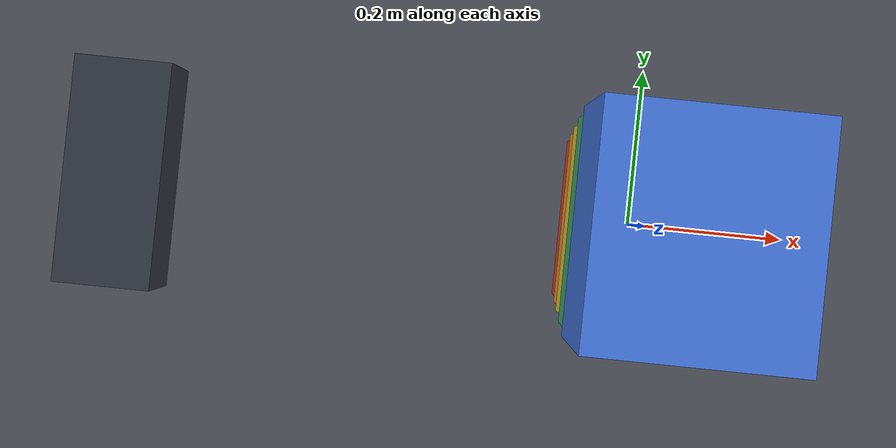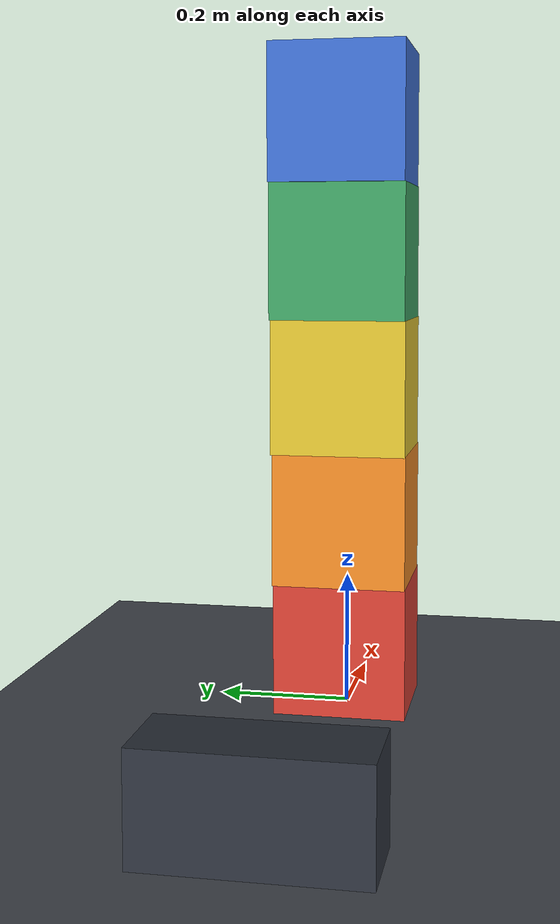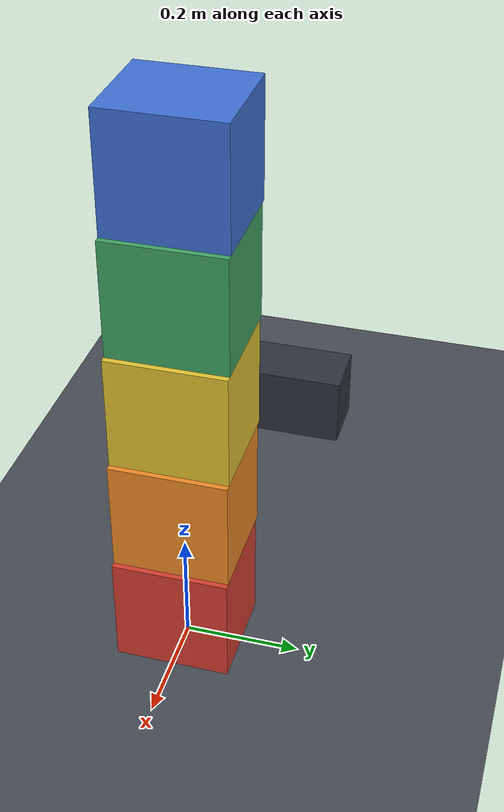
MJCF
<mujoco model="five_block_topple">
  <compiler angle="radian"/>
  <option timestep="0.002" gravity="0 0 -9.81" integrator="implicitfast" iterations="80"/>
  <statistic center="0 0 0.45" extent="1.6"/>

  <visual>
    <headlight ambient="0.35 0.35 0.35" diffuse="0.7 0.7 0.7" specular="0.2 0.2 0.2"/>
  </visual>

  <worldbody>
    <light name="overhead" pos="-1 -2 4" dir="0.2 0.3 -1"/>
    <geom name="floor" type="plane" size="5 5 0.1" friction="0.8 0.01 0.001" rgba="0.28 0.30 0.33 1"/>

    <!-- Slightly staggered, but statically supported, before the impact. -->
    <body name="block1" pos="0 0 0.10">
      <freejoint name="block1_free"/>
      <geom name="block1_geom" type="box" size="0.09 0.10 0.10" mass="0.5" friction="0.8 0.01 0.001" solref="0.01 1" rgba="0.85 0.25 0.20 1"/>
    </body>

    <body name="block2" pos="-0.01 0 0.30">
      <freejoint name="block2_free"/>
      <geom name="block2_geom" type="box" size="0.09 0.10 0.10" mass="0.5" friction="0.8 0.01 0.001" solref="0.01 1" rgba="0.95 0.55 0.15 1"/>
    </body>

    <body name="block3" pos="-0.02 0 0.50">
      <freejoint name="block3_free"/>
      <geom name="block3_geom" type="box" size="0.09 0.10 0.10" mass="0.5" friction="0.8 0.01 0.001" solref="0.01 1" rgba="0.90 0.78 0.20 1"/>
    </body>

    <body name="block4" pos="-0.03 0 0.70">
      <freejoint name="block4_free"/>
      <geom name="block4_geom" type="box" size="0.09 0.10 0.10" mass="0.5" friction="0.8 0.01 0.001" solref="0.01 1" rgba="0.25 0.65 0.40 1"/>
    </body>

    <body name="block5" pos="-0.04 0 0.90">
      <freejoint name="block5_free"/>
      <geom name="block5_geom" type="box" size="0.09 0.10 0.10" mass="0.5" friction="0.8 0.01 0.001" solref="0.01 1" rgba="0.25 0.45 0.85 1"/>
    </body>

    <!-- The guided striker coasts into the bottom block after about 0.5 s. -->
    <body name="pusher" pos="-0.65 0 0.09">
      <joint name="pusher_slide" type="slide" axis="1 0 0" limited="false" damping="0"/>
      <geom name="pusher_geom" type="box" size="0.06 0.14 0.07" mass="10" friction="0.8 0.01 0.001" solref="0.01 1" rgba="0.18 0.20 0.24 1"/>
    </body>
  </worldbody>

  <keyframe>
    <key name="start" qvel="0 0 0 0 0 0   0 0 0 0 0 0   0 0 0 0 0 0   0 0 0 0 0 0   0 0 0 0 0 0   1"/>
  </keyframe>
</mujoco>
